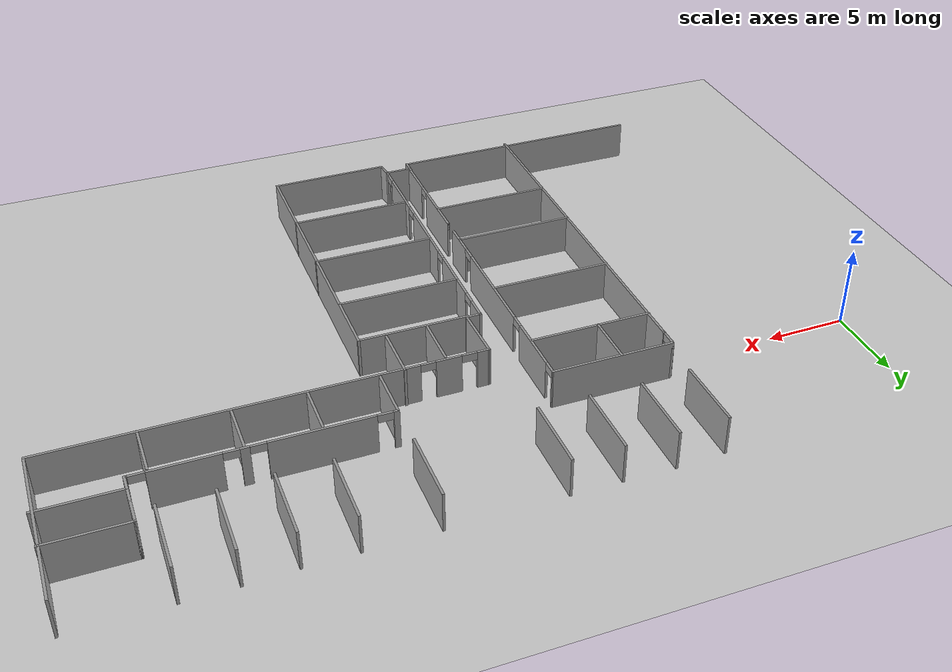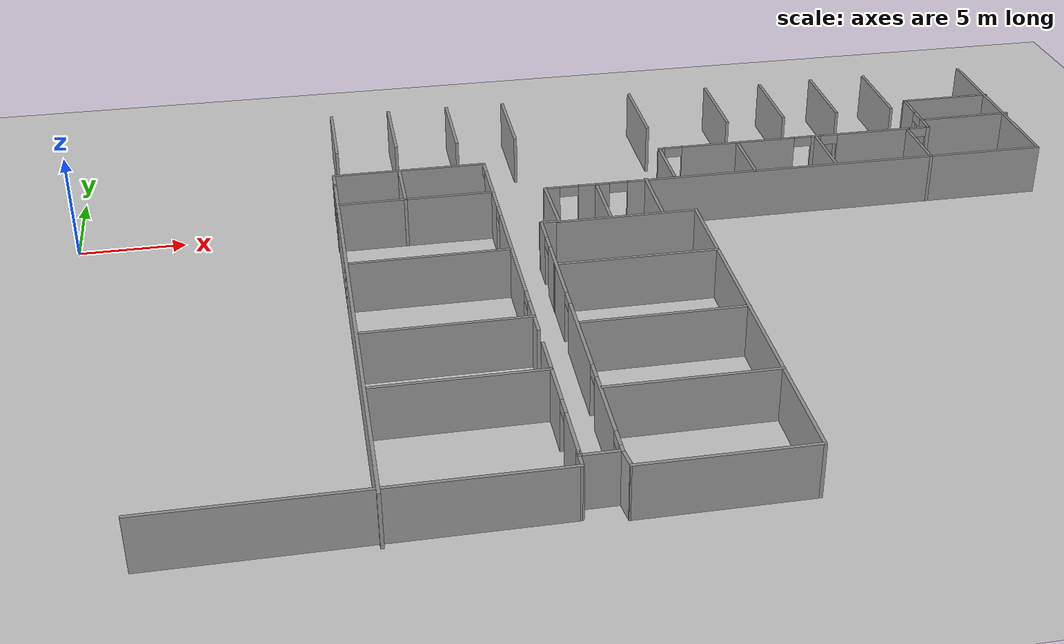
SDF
<sdf version="1.7">
 <world name="default">
  <model name="ground_plane">
   <static>1</static>
   <link name="link">
    <collision name="collision">
     <geometry><plane><normal>0 0 1</normal><size>100 100</size></plane></geometry>
     <surface><friction><ode><mu>100</mu><mu2>50</mu2></ode></friction></surface>
    </collision>
    <visual name="visual">
     <cast_shadows>0</cast_shadows>
     <geometry><plane><normal>0 0 1</normal><size>100 100</size></plane></geometry>
     <material>
      <script><uri>file://media/materials/scripts/gazebo.material</uri><name>Gazebo/Grey</name></script>
     </material>
    </visual>
   </link>
  </model>
  <model name="jec_6th_all_doors">
   <pose>6.89447 -8.09984 0 0 -0 0</pose>
   <link name="Wall_10">
    <collision name="Wall_10_Collision">
     <geometry><box><size>1.75 0.15 2.5</size></box></geometry>
     <pose>0 0 1.25 0 -0 0</pose>
    </collision>
    <visual name="Wall_10_Visual">
     <pose>0 0 1.25 0 -0 0</pose>
     <geometry><box><size>1.75 0.15 2.5</size></box></geometry>
     <material>
      <script><uri>file://media/materials/scripts/gazebo.material</uri><name>Gazebo/Grey</name></script>
      <ambient>1 1 1 1</ambient>
     </material>
     <meta><layer>0</layer></meta>
    </visual>
    <pose>13.6994 -15.3577 0 0 -0 3.14159</pose>
   </link>
   <link name="Wall_100">
    <collision name="Wall_100_Collision">
     <geometry><box><size>4.5 0.15 2.5</size></box></geometry>
     <pose>0 0 1.25 0 -0 0</pose>
    </collision>
    <visual name="Wall_100_Visual">
     <pose>0 0 1.25 0 -0 0</pose>
     <geometry><box><size>4.5 0.15 2.5</size></box></geometry>
     <material>
      <script><uri>file://media/materials/scripts/gazebo.material</uri><name>Gazebo/Grey</name></script>
      <ambient>1 1 1 1</ambient>
     </material>
     <meta><layer>0</layer></meta>
    </visual>
    <pose>11.8384 14.0513 0 0 -0 1.5708</pose>
   </link>
   <link name="Wall_102">
    <collision name="Wall_102_Collision">
     <geometry><box><size>4.5 0.15 2.5</size></box></geometry>
     <pose>0 0 1.25 0 -0 0</pose>
    </collision>
    <visual name="Wall_102_Visual">
     <pose>0 0 1.25 0 -0 0</pose>
     <geometry><box><size>4.5 0.15 2.5</size></box></geometry>
     <material>
      <script><uri>file://media/materials/scripts/gazebo.material</uri><name>Gazebo/Grey</name></script>
      <ambient>1 1 1 1</ambient>
     </material>
     <meta><layer>0</layer></meta>
    </visual>
    <pose>14.8392 14.0233 0 0 -0 1.5708</pose>
   </link>
   <link name="Wall_104">
    <collision name="Wall_104_Collision">
     <geometry><box><size>4.5 0.15 2.5</size></box></geometry>
     <pose>0 0 1.25 0 -0 0</pose>
    </collision>
    <visual name="Wall_104_Visual">
     <pose>0 0 1.25 0 -0 0</pose>
     <geometry><box><size>4.5 0.15 2.5</size></box></geometry>
     <material>
      <script><uri>file://media/materials/scripts/gazebo.material</uri><name>Gazebo/Grey</name></script>
      <ambient>1 1 1 1</ambient>
     </material>
     <meta><layer>0</layer></meta>
    </visual>
    <pose>21.7944 14.0373 0 0 -0 1.5708</pose>
   </link>
   <link name="Wall_106">
    <collision name="Wall_106_Collision">
     <geometry><box><size>4.5 0.15 2.5</size></box></geometry>
     <pose>0 0 1.25 0 -0 0</pose>
    </collision>
    <visual name="Wall_106_Visual">
     <pose>0 0 1.25 0 -0 0</pose>
     <geometry><box><size>4.5 0.15 2.5</size></box></geometry>
     <material>
      <script><uri>file://media/materials/scripts/gazebo.material</uri><name>Gazebo/Grey</name></script>
      <ambient>1 1 1 1</ambient>
     </material>
     <meta><layer>0</layer></meta>
    </visual>
    <pose>26.0713 14.0093 0 0 -0 1.5708</pose>
   </link>
   <link name="Wall_108">
    <collision name="Wall_108_Collision">
     <geometry><box><size>4.5 0.15 2.5</size></box></geometry>
     <pose>0 0 1.25 0 -0 0</pose>
    </collision>
    <visual name="Wall_108_Visual">
     <pose>0 0 1.25 0 -0 0</pose>
     <geometry><box><size>4.5 0.15 2.5</size></box></geometry>
     <material>
      <script><uri>file://media/materials/scripts/gazebo.material</uri><name>Gazebo/Grey</name></script>
      <ambient>1 1 1 1</ambient>
     </material>
     <meta><layer>0</layer></meta>
    </visual>
    <pose>29.1282 13.9812 0 0 -0 1.5708</pose>
   </link>
   <link name="Wall_11">
    <pose>12.8709 -3.07187 0 0 -0 1.57311</pose>
    <visual name="Wall_11_Visual_0">
     <pose>-10.9495 0 1.25 0 -0 0</pose>
     <geometry><box><size>2.82258 0.15 2.5</size></box></geometry>
     <material>
      <script><uri>file://media/materials/scripts/gazebo.material</uri><name>Gazebo/Grey</name></script>
      <ambient>1 1 1 1</ambient>
     </material>
     <meta><layer>0</layer></meta>
    </visual>
    <collision name="Wall_11_Collision_0">
     <geometry><box><size>2.82258 0.15 2.5</size></box></geometry>
     <pose>-10.9495 0 1.25 0 -0 0</pose>
    </collision>
    <visual name="Wall_11_Visual_1">
     <pose>-6.5426 0 1.25 0 -0 0</pose>
     <geometry><box><size>4.19128 0.15 2.5</size></box></geometry>
     <material>
      <script><uri>file://media/materials/scripts/gazebo.material</uri><name>Gazebo/Grey</name></script>
      <ambient>1 1 1 1</ambient>
     </material>
     <meta><layer>0</layer></meta>
    </visual>
    <collision name="Wall_11_Collision_1">
     <geometry><box><size>4.19128 0.15 2.5</size></box></geometry>
     <pose>-6.5426 0 1.25 0 -0 0</pose>
    </collision>
    <visual name="Wall_11_Visual_2">
     <pose>-2.36845 0 1.25 0 -0 0</pose>
     <geometry><box><size>2.35702 0.15 2.5</size></box></geometry>
     <material>
      <script><uri>file://media/materials/scripts/gazebo.material</uri><name>Gazebo/Grey</name></script>
      <ambient>1 1 1 1</ambient>
     </material>
     <meta><layer>0</layer></meta>
    </visual>
    <collision name="Wall_11_Collision_2">
     <geometry><box><size>2.35702 0.15 2.5</size></box></geometry>
     <pose>-2.36845 0 1.25 0 -0 0</pose>
    </collision>
    <visual name="Wall_11_Visual_3">
     <pose>3.22052 0 1.25 0 -0 0</pose>
     <geometry><box><size>7.02092 0.15 2.5</size></box></geometry>
     <material>
      <script><uri>file://media/materials/scripts/gazebo.material</uri><name>Gazebo/Grey</name></script>
      <ambient>1 1 1 1</ambient>
     </material>
     <meta><layer>0</layer></meta>
    </visual>
    <collision name="Wall_11_Collision_3">
     <geometry><box><size>7.02092 0.15 2.5</size></box></geometry>
     <pose>3.22052 0 1.25 0 -0 0</pose>
    </collision>
    <visual name="Wall_11_Visual_4">
     <pose>9.5292 0 1.25 0 -0 0</pose>
     <geometry><box><size>3.79644 0.15 2.5</size></box></geometry>
     <material>
      <script><uri>file://media/materials/scripts/gazebo.material</uri><name>Gazebo/Grey</name></script>
      <ambient>1 1 1 1</ambient>
     </material>
     <meta><layer>0</layer></meta>
    </visual>
    <collision name="Wall_11_Collision_4">
     <geometry><box><size>3.79644 0.15 2.5</size></box></geometry>
     <pose>9.5292 0 1.25 0 -0 0</pose>
    </collision>
    <visual name="Wall_11_Visual_5">
     <pose>12.3441 0 1.25 0 -0 0</pose>
     <geometry><box><size>0.033401 0.15 2.5</size></box></geometry>
     <material>
      <script><uri>file://media/materials/scripts/gazebo.material</uri><name>Gazebo/Grey</name></script>
      <ambient>1 1 1 1</ambient>
     </material>
     <meta><layer>0</layer></meta>
    </visual>
    <collision name="Wall_11_Collision_5">
     <geometry><box><size>0.033401 0.15 2.5</size></box></geometry>
     <pose>12.3441 0 1.25 0 -0 0</pose>
    </collision>
    <visual name="Wall_11_Visual_6">
     <pose>-9.08824 0 2.25 0 -0 0</pose>
     <geometry><box><size>0.9 0.15 0.5</size></box></geometry>
     <material>
      <script><uri>file://media/materials/scripts/gazebo.material</uri><name>Gazebo/Grey</name></script>
      <ambient>1 1 1 1</ambient>
     </material>
     <meta><layer>0</layer></meta>
    </visual>
    <collision name="Wall_11_Collision_6">
     <geometry><box><size>0.9 0.15 0.5</size></box></geometry>
     <pose>-9.08824 0 2.25 0 -0 0</pose>
    </collision>
    <visual name="Wall_11_Visual_7">
     <pose>-4.44696 0 2.25 0 -0 0</pose>
     <geometry><box><size>0 0.15 0.5</size></box></geometry>
     <material>
      <script><uri>file://media/materials/scripts/gazebo.material</uri><name>Gazebo/Grey</name></script>
      <ambient>1 1 1 1</ambient>
     </material>
     <meta><layer>0</layer></meta>
    </visual>
    <collision name="Wall_11_Collision_7">
     <geometry><box><size>0 0.15 0.5</size></box></geometry>
     <pose>-4.44696 0 2.25 0 -0 0</pose>
    </collision>
    <visual name="Wall_11_Visual_8">
     <pose>-0.73994 0 2.25 0 -0 0</pose>
     <geometry><box><size>0.9 0.15 0.5</size></box></geometry>
     <material>
      <script><uri>file://media/materials/scripts/gazebo.material</uri><name>Gazebo/Grey</name></script>
      <ambient>1 1 1 1</ambient>
     </material>
     <meta><layer>0</layer></meta>
    </visual>
    <collision name="Wall_11_Collision_8">
     <geometry><box><size>0.9 0.15 0.5</size></box></geometry>
     <pose>-0.73994 0 2.25 0 -0 0</pose>
    </collision>
    <visual name="Wall_11_Visual_9">
     <pose>7.18098 0 2.25 0 -0 0</pose>
     <geometry><box><size>0.9 0.15 0.5</size></box></geometry>
     <material>
      <script><uri>file://media/materials/scripts/gazebo.material</uri><name>Gazebo/Grey</name></script>
      <ambient>1 1 1 1</ambient>
     </material>
     <meta><layer>0</layer></meta>
    </visual>
    <collision name="Wall_11_Collision_9">
     <geometry><box><size>0.9 0.15 0.5</size></box></geometry>
     <pose>7.18098 0 2.25 0 -0 0</pose>
    </collision>
    <visual name="Wall_11_Visual_10">
     <pose>11.8774 0 2.25 0 -0 0</pose>
     <geometry><box><size>0.9 0.15 0.5</size></box></geometry>
     <material>
      <script><uri>file://media/materials/scripts/gazebo.material</uri><name>Gazebo/Grey</name></script>
      <ambient>1 1 1 1</ambient>
     </material>
     <meta><layer>0</layer></meta>
    </visual>
    <collision name="Wall_11_Collision_10">
     <geometry><box><size>0.9 0.15 0.5</size></box></geometry>
     <pose>11.8774 0 2.25 0 -0 0</pose>
    </collision>
   </link>
   <link name="Wall_110">
    <collision name="Wall_110_Collision">
     <geometry><box><size>4.5 0.15 2.5</size></box></geometry>
     <pose>0 0 1.25 0 -0 0</pose>
    </collision>
    <visual name="Wall_110_Visual">
     <pose>0 0 1.25 0 -0 0</pose>
     <geometry><box><size>4.5 0.15 2.5</size></box></geometry>
     <material>
      <script><uri>file://media/materials/scripts/gazebo.material</uri><name>Gazebo/Grey</name></script>
      <ambient>1 1 1 1</ambient>
     </material>
     <meta><layer>0</layer></meta>
    </visual>
    <pose>32.0766 14.0631 0 0 -0 1.5708</pose>
   </link>
   <link name="Wall_112">
    <collision name="Wall_112_Collision">
     <geometry><box><size>4.5 0.15 2.5</size></box></geometry>
     <pose>0 0 1.25 0 -0 0</pose>
    </collision>
    <visual name="Wall_112_Visual">
     <pose>0 0 1.25 0 -0 0</pose>
     <geometry><box><size>4.5 0.15 2.5</size></box></geometry>
     <material>
      <script><uri>file://media/materials/scripts/gazebo.material</uri><name>Gazebo/Grey</name></script>
      <ambient>1 1 1 1</ambient>
     </material>
     <meta><layer>0</layer></meta>
    </visual>
    <pose>35.118 14.0631 0 0 -0 1.5708</pose>
   </link>
   <link name="Wall_123">
    <pose>5.4425 8.66391 0 0 -0 1.5708</pose>
    <visual name="Wall_123_Visual_0">
     <pose>-0.514107 0 1.25 0 -0 0</pose>
     <geometry><box><size>0.221785 0.15 2.5</size></box></geometry>
     <material>
      <script><uri>file://media/materials/scripts/gazebo.material</uri><name>Gazebo/Grey</name></script>
      <ambient>1 1 1 1</ambient>
     </material>
     <meta><layer>0</layer></meta>
    </visual>
    <collision name="Wall_123_Collision_0">
     <geometry><box><size>0.221785 0.15 2.5</size></box></geometry>
     <pose>-0.514107 0 1.25 0 -0 0</pose>
    </collision>
    <visual name="Wall_123_Visual_1">
     <pose>0.560893 0 1.25 0 -0 0</pose>
     <geometry><box><size>0.128215 0.15 2.5</size></box></geometry>
     <material>
      <script><uri>file://media/materials/scripts/gazebo.material</uri><name>Gazebo/Grey</name></script>
      <ambient>1 1 1 1</ambient>
     </material>
     <meta><layer>0</layer></meta>
    </visual>
    <collision name="Wall_123_Collision_1">
     <geometry><box><size>0.128215 0.15 2.5</size></box></geometry>
     <pose>0.560893 0 1.25 0 -0 0</pose>
    </collision>
    <visual name="Wall_123_Visual_2">
     <pose>0.046785 0 2.25 0 -0 0</pose>
     <geometry><box><size>0.9 0.15 0.5</size></box></geometry>
     <material>
      <script><uri>file://media/materials/scripts/gazebo.material</uri><name>Gazebo/Grey</name></script>
      <ambient>1 1 1 1</ambient>
     </material>
     <meta><layer>0</layer></meta>
    </visual>
    <collision name="Wall_123_Collision_2">
     <geometry><box><size>0.9 0.15 0.5</size></box></geometry>
     <pose>0.046785 0 2.25 0 -0 0</pose>
    </collision>
   </link>
   <link name="Wall_124">
    <collision name="Wall_124_Collision">
     <geometry><box><size>7.55 0.15 2.5</size></box></geometry>
     <pose>0 0 1.25 0 -0 0</pose>
    </collision>
    <visual name="Wall_124_Visual">
     <pose>0 0 1.25 0 -0 0</pose>
     <geometry><box><size>7.55 0.15 2.5</size></box></geometry>
     <material>
      <script><uri>file://media/materials/scripts/gazebo.material</uri><name>Gazebo/Grey</name></script>
      <ambient>1 1 1 1</ambient>
     </material>
     <meta><layer>0</layer></meta>
    </visual>
    <pose>9.1425 9.21391 0 0 -0 0</pose>
   </link>
   <link name="Wall_127">
    <collision name="Wall_127_Collision">
     <geometry><box><size>24.5 0.15 2.5</size></box></geometry>
     <pose>0 0 1.25 0 -0 0</pose>
    </collision>
    <visual name="Wall_127_Visual">
     <pose>0 0 1.25 0 -0 0</pose>
     <geometry><box><size>24.5 0.15 2.5</size></box></geometry>
     <material>
      <script><uri>file://media/materials/scripts/gazebo.material</uri><name>Gazebo/Grey</name></script>
      <ambient>1 1 1 1</ambient>
     </material>
     <meta><layer>0</layer></meta>
    </visual>
    <pose>5.4425 -4.06109 0 0 -0 -1.5708</pose>
   </link>
   <link name="Wall_129">
    <collision name="Wall_129_Collision">
     <geometry><box><size>7.5 0.15 2.5</size></box></geometry>
     <pose>0 0 1.25 0 -0 0</pose>
    </collision>
    <visual name="Wall_129_Visual">
     <pose>0 0 1.25 0 -0 0</pose>
     <geometry><box><size>7.5 0.15 2.5</size></box></geometry>
     <material>
      <script><uri>file://media/materials/scripts/gazebo.material</uri><name>Gazebo/Grey</name></script>
      <ambient>1 1 1 1</ambient>
     </material>
     <meta><layer>0</layer></meta>
    </visual>
    <pose>9.0767 6.11565 0 0 -0 0</pose>
   </link>
   <link name="Wall_131">
    <collision name="Wall_131_Collision">
     <geometry><box><size>3.25 0.15 2.5</size></box></geometry>
     <pose>0 0 1.25 0 -0 0</pose>
    </collision>
    <visual name="Wall_131_Visual">
     <pose>0 0 1.25 0 -0 0</pose>
     <geometry><box><size>3.25 0.15 2.5</size></box></geometry>
     <material>
      <script><uri>file://media/materials/scripts/gazebo.material</uri><name>Gazebo/Grey</name></script>
      <ambient>1 1 1 1</ambient>
     </material>
     <meta><layer>0</layer></meta>
    </visual>
    <pose>8.64352 7.65948 0 0 -0 -1.5708</pose>
   </link>
   <link name="Wall_133">
    <collision name="Wall_133_Collision">
     <geometry><box><size>7.5 0.15 2.5</size></box></geometry>
     <pose>0 0 1.25 0 -0 0</pose>
    </collision>
    <visual name="Wall_133_Visual">
     <pose>0 0 1.25 0 -0 0</pose>
     <geometry><box><size>7.5 0.15 2.5</size></box></geometry>
     <material>
      <script><uri>file://media/materials/scripts/gazebo.material</uri><name>Gazebo/Grey</name></script>
      <ambient>1 1 1 1</ambient>
     </material>
     <meta><layer>0</layer></meta>
    </visual>
    <pose>9.10958 0.409886 0 0 -0 0</pose>
   </link>
   <link name="Wall_135">
    <collision name="Wall_135_Collision">
     <geometry><box><size>7.5 0.15 2.5</size></box></geometry>
     <pose>0 0 1.25 0 -0 0</pose>
    </collision>
    <visual name="Wall_135_Visual">
     <pose>0 0 1.25 0 -0 0</pose>
     <geometry><box><size>7.5 0.15 2.5</size></box></geometry>
     <material>
      <script><uri>file://media/materials/scripts/gazebo.material</uri><name>Gazebo/Grey</name></script>
      <ambient>1 1 1 1</ambient>
     </material>
     <meta><layer>0</layer></meta>
    </visual>
    <pose>18.2355 -1.31664 0 0 -0 0</pose>
   </link>
   <link name="Wall_137">
    <collision name="Wall_137_Collision">
     <geometry><box><size>7.5 0.15 2.5</size></box></geometry>
     <pose>0 0 1.25 0 -0 0</pose>
    </collision>
    <visual name="Wall_137_Visual">
     <pose>0 0 1.25 0 -0 0</pose>
     <geometry><box><size>7.5 0.15 2.5</size></box></geometry>
     <material>
      <script><uri>file://media/materials/scripts/gazebo.material</uri><name>Gazebo/Grey</name></script>
      <ambient>1 1 1 1</ambient>
     </material>
     <meta><layer>0</layer></meta>
    </visual>
    <pose>18.3177 -6.29891 0 0 -0 0</pose>
   </link>
   <link name="Wall_139">
    <collision name="Wall_139_Collision">
     <geometry><box><size>7.5 0.15 2.5</size></box></geometry>
     <pose>0 0 1.25 0 -0 0</pose>
    </collision>
    <visual name="Wall_139_Visual">
     <pose>0 0 1.25 0 -0 0</pose>
     <geometry><box><size>7.5 0.15 2.5</size></box></geometry>
     <material>
      <script><uri>file://media/materials/scripts/gazebo.material</uri><name>Gazebo/Grey</name></script>
      <ambient>1 1 1 1</ambient>
     </material>
     <meta><layer>0</layer></meta>
    </visual>
    <pose>18.3056 -11.1696 0 0 -0 0</pose>
   </link>
   <link name="Wall_141">
    <collision name="Wall_141_Collision">
     <geometry><box><size>1.10155 0.15 2.5</size></box></geometry>
     <pose>0 0 1.25 0 -0 0</pose>
    </collision>
    <visual name="Wall_141_Visual">
     <pose>0 0 1.25 0 -0 0</pose>
     <geometry><box><size>1.10155 0.15 2.5</size></box></geometry>
     <material>
      <script><uri>file://media/materials/scripts/gazebo.material</uri><name>Gazebo/Grey</name></script>
      <ambient>1 1 1 1</ambient>
     </material>
     <meta><layer>0</layer></meta>
    </visual>
    <pose>14.5593 -15.8296 0 0 -0 1.69711</pose>
   </link>
   <link name="Wall_143">
    <collision name="Wall_143_Collision">
     <geometry><box><size>7.5 0.15 2.5</size></box></geometry>
     <pose>0 0 1.25 0 -0 0</pose>
    </collision>
    <visual name="Wall_143_Visual">
     <pose>0 0 1.25 0 -0 0</pose>
     <geometry><box><size>7.5 0.15 2.5</size></box></geometry>
     <material>
      <script><uri>file://media/materials/scripts/gazebo.material</uri><name>Gazebo/Grey</name></script>
      <ambient>1 1 1 1</ambient>
     </material>
     <meta><layer>0</layer></meta>
    </visual>
    <pose>18.2942 -16.3016 0 0 -0 0</pose>
   </link>
   <link name="Wall_144">
    <collision name="Wall_144_Collision">
     <geometry><box><size>19 0.15 2.5</size></box></geometry>
     <pose>0 0 1.25 0 -0 0</pose>
    </collision>
    <visual name="Wall_144_Visual">
     <pose>0 0 1.25 0 -0 0</pose>
     <geometry><box><size>19 0.15 2.5</size></box></geometry>
     <material>
      <script><uri>file://media/materials/scripts/gazebo.material</uri><name>Gazebo/Grey</name></script>
      <ambient>1 1 1 1</ambient>
     </material>
     <meta><layer>0</layer></meta>
    </visual>
    <pose>21.9692 -6.87663 0 0 -0 1.5708</pose>
   </link>
   <link name="Wall_146">
    <collision name="Wall_146_Collision">
     <geometry><box><size>6.75 0.15 2.5</size></box></geometry>
     <pose>0 0 1.25 0 -0 0</pose>
    </collision>
    <visual name="Wall_146_Visual">
     <pose>0 0 1.25 0 -0 0</pose>
     <geometry><box><size>6.75 0.15 2.5</size></box></geometry>
     <material>
      <script><uri>file://media/materials/scripts/gazebo.material</uri><name>Gazebo/Grey</name></script>
      <ambient>1 1 1 1</ambient>
     </material>
     <meta><layer>0</layer></meta>
    </visual>
    <pose>18.6692 2.54837 0 0 -0 3.14159</pose>
   </link>
   <link name="Wall_148">
    <collision name="Wall_148_Collision">
     <geometry><box><size>3.5 0.15 2.5</size></box></geometry>
     <pose>0 0 1.25 0 -0 0</pose>
    </collision>
    <visual name="Wall_148_Visual">
     <pose>0 0 1.25 0 -0 0</pose>
     <geometry><box><size>3.5 0.15 2.5</size></box></geometry>
     <material>
      <script><uri>file://media/materials/scripts/gazebo.material</uri><name>Gazebo/Grey</name></script>
      <ambient>1 1 1 1</ambient>
     </material>
     <meta><layer>0</layer></meta>
    </visual>
    <pose>20.3752 4.41514 0 0 -0 -1.5708</pose>
   </link>
   <link name="Wall_150">
    <collision name="Wall_150_Collision">
     <geometry><box><size>7.5 0.15 2.5</size></box></geometry>
     <pose>0 0 1.25 0 -0 0</pose>
    </collision>
    <visual name="Wall_150_Visual">
     <pose>0 0 1.25 0 -0 0</pose>
     <geometry><box><size>7.5 0.15 2.5</size></box></geometry>
     <material>
      <script><uri>file://media/materials/scripts/gazebo.material</uri><name>Gazebo/Grey</name></script>
      <ambient>1 1 1 1</ambient>
     </material>
     <meta><layer>0</layer></meta>
    </visual>
    <pose>9.18576 -5.46599 0 0 -0 0</pose>
   </link>
   <link name="Wall_152">
    <collision name="Wall_152_Collision">
     <geometry><box><size>7.5 0.15 2.5</size></box></geometry>
     <pose>0 0 1.25 0 -0 0</pose>
    </collision>
    <visual name="Wall_152_Visual">
     <pose>0 0 1.25 0 -0 0</pose>
     <geometry><box><size>7.5 0.15 2.5</size></box></geometry>
     <material>
      <script><uri>file://media/materials/scripts/gazebo.material</uri><name>Gazebo/Grey</name></script>
      <ambient>1 1 1 1</ambient>
     </material>
     <meta><layer>0</layer></meta>
    </visual>
    <pose>9.17245 -9.53865 0 0 -0 0</pose>
   </link>
   <link name="Wall_184">
    <collision name="Wall_184_Collision">
     <geometry><box><size>3.25 0.15 2.5</size></box></geometry>
     <pose>0 0 1.25 0 -0 0</pose>
    </collision>
    <visual name="Wall_184_Visual">
     <pose>0 0 1.25 0 -0 0</pose>
     <geometry><box><size>3.25 0.15 2.5</size></box></geometry>
     <material>
      <script><uri>file://media/materials/scripts/gazebo.material</uri><name>Gazebo/Grey</name></script>
      <ambient>1 1 1 1</ambient>
     </material>
     <meta><layer>0</layer></meta>
    </visual>
    <pose>17.8944 4.25238 0 0 -0 1.5708</pose>
   </link>
   <link name="Wall_186">
    <collision name="Wall_186_Collision">
     <geometry><box><size>3.25 0.15 2.5</size></box></geometry>
     <pose>0 0 1.25 0 -0 0</pose>
    </collision>
    <visual name="Wall_186_Visual">
     <pose>0 0 1.25 0 -0 0</pose>
     <geometry><box><size>3.25 0.15 2.5</size></box></geometry>
     <material>
      <script><uri>file://media/materials/scripts/gazebo.material</uri><name>Gazebo/Grey</name></script>
      <ambient>1 1 1 1</ambient>
     </material>
     <meta><layer>0</layer></meta>
    </visual>
    <pose>25.9013 7.59221 0 0 -0 1.5708</pose>
   </link>
   <link name="Wall_188">
    <collision name="Wall_188_Collision">
     <geometry><box><size>3.25 0.15 2.5</size></box></geometry>
     <pose>0 0 1.25 0 -0 0</pose>
    </collision>
    <visual name="Wall_188_Visual">
     <pose>0 0 1.25 0 -0 0</pose>
     <geometry><box><size>3.25 0.15 2.5</size></box></geometry>
     <material>
      <script><uri>file://media/materials/scripts/gazebo.material</uri><name>Gazebo/Grey</name></script>
      <ambient>1 1 1 1</ambient>
     </material>
     <meta><layer>0</layer></meta>
    </visual>
    <pose>30.0739 7.60416 0 0 -0 1.5708</pose>
   </link>
   <link name="Wall_190">
    <collision name="Wall_190_Collision">
     <geometry><box><size>3.25 0.15 2.5</size></box></geometry>
     <pose>0 0 1.25 0 -0 0</pose>
    </collision>
    <visual name="Wall_190_Visual">
     <pose>0 0 1.25 0 -0 0</pose>
     <geometry><box><size>3.25 0.15 2.5</size></box></geometry>
     <material>
      <script><uri>file://media/materials/scripts/gazebo.material</uri><name>Gazebo/Grey</name></script>
      <ambient>1 1 1 1</ambient>
     </material>
     <meta><layer>0</layer></meta>
    </visual>
    <pose>35.0115 7.54439 0 0 -0 1.5708</pose>
   </link>
   <link name="Wall_2">
    <collision name="Wall_2_Collision">
     <geometry><box><size>10.4007 0.15 2.5</size></box></geometry>
     <pose>0 0 1.25 0 -0 0</pose>
    </collision>
    <visual name="Wall_2_Visual">
     <pose>0 0 1.25 0 -0 0</pose>
     <geometry><box><size>10.4007 0.15 2.5</size></box></geometry>
     <material>
      <script><uri>file://media/materials/scripts/gazebo.material</uri><name>Gazebo/Grey</name></script>
      <ambient>1 1 1 1</ambient>
     </material>
     <meta><layer>0</layer></meta>
    </visual>
    <pose>40.7114 11.1305 0 0 -0 -1.5695</pose>
   </link>
   <link name="Wall_3">
    <pose>28.0431 6.00369 0 0 -0 3.14159</pose>
    <visual name="Wall_3_Visual_0">
     <pose>-2.07114 0 1.25 0 -0 0</pose>
     <geometry><box><size>21.3577 0.15 2.5</size></box></geometry>
     <material>
      <script><uri>file://media/materials/scripts/gazebo.material</uri><name>Gazebo/Grey</name></script>
      <ambient>1 1 1 1</ambient>
     </material>
     <meta><layer>0</layer></meta>
    </visual>
    <collision name="Wall_3_Collision_0">
     <geometry><box><size>21.3577 0.15 2.5</size></box></geometry>
     <pose>-2.07114 0 1.25 0 -0 0</pose>
    </collision>
    <visual name="Wall_3_Visual_1">
     <pose>10.2752 0 1.25 0 -0 0</pose>
     <geometry><box><size>1.53495 0.15 2.5</size></box></geometry>
     <material>
      <script><uri>file://media/materials/scripts/gazebo.material</uri><name>Gazebo/Grey</name></script>
      <ambient>1 1 1 1</ambient>
     </material>
     <meta><layer>0</layer></meta>
    </visual>
    <collision name="Wall_3_Collision_1">
     <geometry><box><size>1.53495 0.15 2.5</size></box></geometry>
     <pose>10.2752 0 1.25 0 -0 0</pose>
    </collision>
    <visual name="Wall_3_Visual_2">
     <pose>12.3463 0 1.25 0 -0 0</pose>
     <geometry><box><size>0.807334 0.15 2.5</size></box></geometry>
     <material>
      <script><uri>file://media/materials/scripts/gazebo.material</uri><name>Gazebo/Grey</name></script>
      <ambient>1 1 1 1</ambient>
     </material>
     <meta><layer>0</layer></meta>
    </visual>
    <collision name="Wall_3_Collision_2">
     <geometry><box><size>0.807334 0.15 2.5</size></box></geometry>
     <pose>12.3463 0 1.25 0 -0 0</pose>
    </collision>
    <visual name="Wall_3_Visual_3">
     <pose>9.05772 0 2.25 0 -0 0</pose>
     <geometry><box><size>0.9 0.15 0.5</size></box></geometry>
     <material>
      <script><uri>file://media/materials/scripts/gazebo.material</uri><name>Gazebo/Grey</name></script>
      <ambient>1 1 1 1</ambient>
     </material>
     <meta><layer>0</layer></meta>
    </visual>
    <collision name="Wall_3_Collision_3">
     <geometry><box><size>0.9 0.15 0.5</size></box></geometry>
     <pose>9.05772 0 2.25 0 -0 0</pose>
    </collision>
    <visual name="Wall_3_Visual_4">
     <pose>11.4927 0 2.25 0 -0 0</pose>
     <geometry><box><size>0.9 0.15 0.5</size></box></geometry>
     <material>
      <script><uri>file://media/materials/scripts/gazebo.material</uri><name>Gazebo/Grey</name></script>
      <ambient>1 1 1 1</ambient>
     </material>
     <meta><layer>0</layer></meta>
    </visual>
    <collision name="Wall_3_Collision_4">
     <geometry><box><size>0.9 0.15 0.5</size></box></geometry>
     <pose>11.4927 0 2.25 0 -0 0</pose>
    </collision>
   </link>
   <link name="Wall_31">
    <collision name="Wall_31_Collision">
     <geometry><box><size>16.4579 0.15 2.5</size></box></geometry>
     <pose>0 0 1.25 0 -0 0</pose>
    </collision>
    <visual name="Wall_31_Visual">
     <pose>0 0 1.25 0 -0 0</pose>
     <geometry><box><size>16.4579 0.15 2.5</size></box></geometry>
     <material>
      <script><uri>file://media/materials/scripts/gazebo.material</uri><name>Gazebo/Grey</name></script>
      <ambient>1 1 1 1</ambient>
     </material>
     <meta><layer>0</layer></meta>
    </visual>
    <pose>4.70329 -15.9744 0 0 -0 -0.002056</pose>
   </link>
   <link name="Wall_32">
    <collision name="Wall_32_Collision">
     <geometry><box><size>1 0.15 2.5</size></box></geometry>
     <pose>0 0 1.25 0 -0 0</pose>
    </collision>
    <visual name="Wall_32_Visual">
     <pose>0 0 1.25 0 -0 0</pose>
     <geometry><box><size>1 0.15 2.5</size></box></geometry>
     <material>
      <script><uri>file://media/materials/scripts/gazebo.material</uri><name>Gazebo/Grey</name></script>
      <ambient>1 1 1 1</ambient>
     </material>
     <meta><layer>0</layer></meta>
    </visual>
    <pose>12.8572 -15.5662 0 0 -0 1.5708</pose>
   </link>
   <link name="Wall_4">
    <collision name="Wall_4_Collision">
     <geometry><box><size>3.52834 0.15 2.5</size></box></geometry>
     <pose>0 0 1.25 0 -0 0</pose>
    </collision>
    <visual name="Wall_4_Visual">
     <pose>0 0 1.25 0 -0 0</pose>
     <geometry><box><size>3.52834 0.15 2.5</size></box></geometry>
     <material>
      <script><uri>file://media/materials/scripts/gazebo.material</uri><name>Gazebo/Grey</name></script>
      <ambient>1 1 1 1</ambient>
     </material>
     <meta><layer>0</layer></meta>
    </visual>
    <pose>15.4045 4.31492 0 0 -0 -1.54923</pose>
   </link>
   <link name="Wall_53">
    <pose>36.1793 10.9769 0 0 -0 -1.5708</pose>
    <visual name="Wall_53_Visual_0">
     <pose>-0.969991 0 1.25 0 -0 0</pose>
     <geometry><box><size>1.56002 0.15 2.5</size></box></geometry>
     <material>
      <script><uri>file://media/materials/scripts/gazebo.material</uri><name>Gazebo/Grey</name></script>
      <ambient>1 1 1 1</ambient>
     </material>
     <meta><layer>0</layer></meta>
    </visual>
    <collision name="Wall_53_Collision_0">
     <geometry><box><size>1.56002 0.15 2.5</size></box></geometry>
     <pose>-0.969991 0 1.25 0 -0 0</pose>
    </collision>
    <visual name="Wall_53_Visual_1">
     <pose>1.23001 0 1.25 0 -0 0</pose>
     <geometry><box><size>1.03998 0.15 2.5</size></box></geometry>
     <material>
      <script><uri>file://media/materials/scripts/gazebo.material</uri><name>Gazebo/Grey</name></script>
      <ambient>1 1 1 1</ambient>
     </material>
     <meta><layer>0</layer></meta>
    </visual>
    <collision name="Wall_53_Collision_1">
     <geometry><box><size>1.03998 0.15 2.5</size></box></geometry>
     <pose>1.23001 0 1.25 0 -0 0</pose>
    </collision>
    <visual name="Wall_53_Visual_2">
     <pose>0.260017 0 2.25 0 -0 0</pose>
     <geometry><box><size>0.9 0.15 0.5</size></box></geometry>
     <material>
      <script><uri>file://media/materials/scripts/gazebo.material</uri><name>Gazebo/Grey</name></script>
      <ambient>1 1 1 1</ambient>
     </material>
     <meta><layer>0</layer></meta>
    </visual>
    <collision name="Wall_53_Collision_2">
     <geometry><box><size>0.9 0.15 0.5</size></box></geometry>
     <pose>0.260017 0 2.25 0 -0 0</pose>
    </collision>
   </link>
   <link name="Wall_56">
    <collision name="Wall_56_Collision">
     <geometry><box><size>4.75 0.15 2.5</size></box></geometry>
     <pose>0 0 1.25 0 -0 0</pose>
    </collision>
    <visual name="Wall_56_Visual">
     <pose>0 0 1.25 0 -0 0</pose>
     <geometry><box><size>4.75 0.15 2.5</size></box></geometry>
     <material>
      <script><uri>file://media/materials/scripts/gazebo.material</uri><name>Gazebo/Grey</name></script>
      <ambient>1 1 1 1</ambient>
     </material>
     <meta><layer>0</layer></meta>
    </visual>
    <pose>38.4793 12.6519 0 0 -0 0</pose>
   </link>
   <link name="Wall_58">
    <pose>29.0043 9.30189 0 0 -0 3.14159</pose>
    <visual name="Wall_58_Visual_0">
     <pose>-7.14921 0 1.25 0 -0 0</pose>
     <geometry><box><size>0.201575 0.15 2.5</size></box></geometry>
     <material>
      <script><uri>file://media/materials/scripts/gazebo.material</uri><name>Gazebo/Grey</name></script>
      <ambient>1 1 1 1</ambient>
     </material>
     <meta><layer>0</layer></meta>
    </visual>
    <collision name="Wall_58_Collision_0">
     <geometry><box><size>0.201575 0.15 2.5</size></box></geometry>
     <pose>-7.14921 0 1.25 0 -0 0</pose>
    </collision>
    <visual name="Wall_58_Visual_1">
     <pose>-4.18936 0 1.25 0 -0 0</pose>
     <geometry><box><size>3.91813 0.15 2.5</size></box></geometry>
     <material>
      <script><uri>file://media/materials/scripts/gazebo.material</uri><name>Gazebo/Grey</name></script>
      <ambient>1 1 1 1</ambient>
     </material>
     <meta><layer>0</layer></meta>
    </visual>
    <collision name="Wall_58_Collision_1">
     <geometry><box><size>3.91813 0.15 2.5</size></box></geometry>
     <pose>-4.18936 0 1.25 0 -0 0</pose>
    </collision>
    <visual name="Wall_58_Visual_2">
     <pose>-1.07491 0 1.25 0 -0 0</pose>
     <geometry><box><size>0.510767 0.15 2.5</size></box></geometry>
     <material>
      <script><uri>file://media/materials/scripts/gazebo.material</uri><name>Gazebo/Grey</name></script>
      <ambient>1 1 1 1</ambient>
     </material>
     <meta><layer>0</layer></meta>
    </visual>
    <collision name="Wall_58_Collision_2">
     <geometry><box><size>0.510767 0.15 2.5</size></box></geometry>
     <pose>-1.07491 0 1.25 0 -0 0</pose>
    </collision>
    <visual name="Wall_58_Visual_3">
     <pose>3.04979 0 1.25 0 -0 0</pose>
     <geometry><box><size>5.93863 0.15 2.5</size></box></geometry>
     <material>
      <script><uri>file://media/materials/scripts/gazebo.material</uri><name>Gazebo/Grey</name></script>
      <ambient>1 1 1 1</ambient>
     </material>
     <meta><layer>0</layer></meta>
    </visual>
    <collision name="Wall_58_Collision_3">
     <geometry><box><size>5.93863 0.15 2.5</size></box></geometry>
     <pose>3.04979 0 1.25 0 -0 0</pose>
    </collision>
    <visual name="Wall_58_Visual_4">
     <pose>7.08455 0 1.25 0 -0 0</pose>
     <geometry><box><size>0.330895 0.15 2.5</size></box></geometry>
     <material>
      <script><uri>file://media/materials/scripts/gazebo.material</uri><name>Gazebo/Grey</name></script>
      <ambient>1 1 1 1</ambient>
     </material>
     <meta><layer>0</layer></meta>
    </visual>
    <collision name="Wall_58_Collision_4">
     <geometry><box><size>0.330895 0.15 2.5</size></box></geometry>
     <pose>7.08455 0 1.25 0 -0 0</pose>
    </collision>
    <visual name="Wall_58_Visual_5">
     <pose>-6.59842 0 2.25 0 -0 0</pose>
     <geometry><box><size>0.9 0.15 0.5</size></box></geometry>
     <material>
      <script><uri>file://media/materials/scripts/gazebo.material</uri><name>Gazebo/Grey</name></script>
      <ambient>1 1 1 1</ambient>
     </material>
     <meta><layer>0</layer></meta>
    </visual>
    <collision name="Wall_58_Collision_5">
     <geometry><box><size>0.9 0.15 0.5</size></box></geometry>
     <pose>-6.59842 0 2.25 0 -0 0</pose>
    </collision>
    <visual name="Wall_58_Visual_6">
     <pose>-1.7803 0 2.25 0 -0 0</pose>
     <geometry><box><size>0.9 0.15 0.5</size></box></geometry>
     <material>
      <script><uri>file://media/materials/scripts/gazebo.material</uri><name>Gazebo/Grey</name></script>
      <ambient>1 1 1 1</ambient>
     </material>
     <meta><layer>0</layer></meta>
    </visual>
    <collision name="Wall_58_Collision_6">
     <geometry><box><size>0.9 0.15 0.5</size></box></geometry>
     <pose>-1.7803 0 2.25 0 -0 0</pose>
    </collision>
    <visual name="Wall_58_Visual_7">
     <pose>-0.36953 0 2.25 0 -0 0</pose>
     <geometry><box><size>0.9 0.15 0.5</size></box></geometry>
     <material>
      <script><uri>file://media/materials/scripts/gazebo.material</uri><name>Gazebo/Grey</name></script>
      <ambient>1 1 1 1</ambient>
     </material>
     <meta><layer>0</layer></meta>
    </visual>
    <collision name="Wall_58_Collision_7">
     <geometry><box><size>0.9 0.15 0.5</size></box></geometry>
     <pose>-0.36953 0 2.25 0 -0 0</pose>
    </collision>
    <visual name="Wall_58_Visual_8">
     <pose>6.4691 0 2.25 0 -0 0</pose>
     <geometry><box><size>0.9 0.15 0.5</size></box></geometry>
     <material>
      <script><uri>file://media/materials/scripts/gazebo.material</uri><name>Gazebo/Grey</name></script>
      <ambient>1 1 1 1</ambient>
     </material>
     <meta><layer>0</layer></meta>
    </visual>
    <collision name="Wall_58_Collision_8">
     <geometry><box><size>0.9 0.15 0.5</size></box></geometry>
     <pose>6.4691 0 2.25 0 -0 0</pose>
    </collision>
   </link>
   <link name="Wall_60">
    <collision name="Wall_60_Collision">
     <geometry><box><size>4.75 0.15 2.5</size></box></geometry>
     <pose>0 0 1.25 0 -0 0</pose>
    </collision>
    <visual name="Wall_60_Visual">
     <pose>0 0 1.25 0 -0 0</pose>
     <geometry><box><size>4.75 0.15 2.5</size></box></geometry>
     <material>
      <script><uri>file://media/materials/scripts/gazebo.material</uri><name>Gazebo/Grey</name></script>
      <ambient>1 1 1 1</ambient>
     </material>
     <meta><layer>0</layer></meta>
    </visual>
    <pose>38.596 10.1939 0 0 -0 3.14159</pose>
   </link>
   <link name="Wall_62">
    <collision name="Wall_62_Collision">
     <geometry><box><size>3.25 0.15 2.5</size></box></geometry>
     <pose>0 0 1.25 0 -0 0</pose>
    </collision>
    <visual name="Wall_62_Visual">
     <pose>0 0 1.25 0 -0 0</pose>
     <geometry><box><size>3.25 0.15 2.5</size></box></geometry>
     <material>
      <script><uri>file://media/materials/scripts/gazebo.material</uri><name>Gazebo/Grey</name></script>
      <ambient>1 1 1 1</ambient>
     </material>
     <meta><layer>0</layer></meta>
    </visual>
    <pose>21.8293 7.75189 0 0 -0 -1.5708</pose>
   </link>
   <link name="Wall_7">
    <collision name="Wall_7_Collision">
     <geometry><box><size>1 0.15 2.5</size></box></geometry>
     <pose>0 0 1.25 0 -0 0</pose>
    </collision>
    <visual name="Wall_7_Visual">
     <pose>0 0 1.25 0 -0 0</pose>
     <geometry><box><size>1 0.15 2.5</size></box></geometry>
     <material>
      <script><uri>file://media/materials/scripts/gazebo.material</uri><name>Gazebo/Grey</name></script>
      <ambient>1 1 1 1</ambient>
     </material>
     <meta><layer>0</layer></meta>
    </visual>
    <pose>15.016 2.62614 0 0 -0 3.14159</pose>
   </link>
   <link name="Wall_8">
    <pose>14.5481 -6.35853 0 0 -0 -1.57621</pose>
    <visual name="Wall_8_Visual_0">
     <pose>-8.31221 0 1.25 0 -0 0</pose>
     <geometry><box><size>1.52408 0.15 2.5</size></box></geometry>
     <material>
      <script><uri>file://media/materials/scripts/gazebo.material</uri><name>Gazebo/Grey</name></script>
      <ambient>1 1 1 1</ambient>
     </material>
     <meta><layer>0</layer></meta>
    </visual>
    <collision name="Wall_8_Collision_0">
     <geometry><box><size>1.52408 0.15 2.5</size></box></geometry>
     <pose>-8.31221 0 1.25 0 -0 0</pose>
    </collision>
    <visual name="Wall_8_Visual_1">
     <pose>-4.59389 0 1.25 0 -0 0</pose>
     <geometry><box><size>4.11255 0.15 2.5</size></box></geometry>
     <material>
      <script><uri>file://media/materials/scripts/gazebo.material</uri><name>Gazebo/Grey</name></script>
      <ambient>1 1 1 1</ambient>
     </material>
     <meta><layer>0</layer></meta>
    </visual>
    <collision name="Wall_8_Collision_1">
     <geometry><box><size>4.11255 0.15 2.5</size></box></geometry>
     <pose>-4.59389 0 1.25 0 -0 0</pose>
    </collision>
    <visual name="Wall_8_Visual_2">
     <pose>0.765564 0 1.25 0 -0 0</pose>
     <geometry><box><size>4.80636 0.15 2.5</size></box></geometry>
     <material>
      <script><uri>file://media/materials/scripts/gazebo.material</uri><name>Gazebo/Grey</name></script>
      <ambient>1 1 1 1</ambient>
     </material>
     <meta><layer>0</layer></meta>
    </visual>
    <collision name="Wall_8_Collision_2">
     <geometry><box><size>4.80636 0.15 2.5</size></box></geometry>
     <pose>0.765564 0 1.25 0 -0 0</pose>
    </collision>
    <visual name="Wall_8_Visual_3">
     <pose>5.91243 0 1.25 0 -0 0</pose>
     <geometry><box><size>3.68736 0.15 2.5</size></box></geometry>
     <material>
      <script><uri>file://media/materials/scripts/gazebo.material</uri><name>Gazebo/Grey</name></script>
      <ambient>1 1 1 1</ambient>
     </material>
     <meta><layer>0</layer></meta>
    </visual>
    <collision name="Wall_8_Collision_3">
     <geometry><box><size>3.68736 0.15 2.5</size></box></geometry>
     <pose>5.91243 0 1.25 0 -0 0</pose>
    </collision>
    <visual name="Wall_8_Visual_4">
     <pose>8.86518 0 1.25 0 -0 0</pose>
     <geometry><box><size>0.418145 0.15 2.5</size></box></geometry>
     <material>
      <script><uri>file://media/materials/scripts/gazebo.material</uri><name>Gazebo/Grey</name></script>
      <ambient>1 1 1 1</ambient>
     </material>
     <meta><layer>0</layer></meta>
    </visual>
    <collision name="Wall_8_Collision_4">
     <geometry><box><size>0.418145 0.15 2.5</size></box></geometry>
     <pose>8.86518 0 1.25 0 -0 0</pose>
    </collision>
    <visual name="Wall_8_Visual_5">
     <pose>-7.10017 0 2.25 0 -0 0</pose>
     <geometry><box><size>0.9 0.15 0.5</size></box></geometry>
     <material>
      <script><uri>file://media/materials/scripts/gazebo.material</uri><name>Gazebo/Grey</name></script>
      <ambient>1 1 1 1</ambient>
     </material>
     <meta><layer>0</layer></meta>
    </visual>
    <collision name="Wall_8_Collision_5">
     <geometry><box><size>0.9 0.15 0.5</size></box></geometry>
     <pose>-7.10017 0 2.25 0 -0 0</pose>
    </collision>
    <visual name="Wall_8_Visual_6">
     <pose>-2.08762 0 2.25 0 -0 0</pose>
     <geometry><box><size>0.9 0.15 0.5</size></box></geometry>
     <material>
      <script><uri>file://media/materials/scripts/gazebo.material</uri><name>Gazebo/Grey</name></script>
      <ambient>1 1 1 1</ambient>
     </material>
     <meta><layer>0</layer></meta>
    </visual>
    <collision name="Wall_8_Collision_6">
     <geometry><box><size>0.9 0.15 0.5</size></box></geometry>
     <pose>-2.08762 0 2.25 0 -0 0</pose>
    </collision>
    <visual name="Wall_8_Visual_7">
     <pose>3.61875 0 2.25 0 -0 0</pose>
     <geometry><box><size>0.9 0.15 0.5</size></box></geometry>
     <material>
      <script><uri>file://media/materials/scripts/gazebo.material</uri><name>Gazebo/Grey</name></script>
      <ambient>1 1 1 1</ambient>
     </material>
     <meta><layer>0</layer></meta>
    </visual>
    <collision name="Wall_8_Collision_7">
     <geometry><box><size>0.9 0.15 0.5</size></box></geometry>
     <pose>3.61875 0 2.25 0 -0 0</pose>
    </collision>
    <visual name="Wall_8_Visual_8">
     <pose>8.20611 0 2.25 0 -0 0</pose>
     <geometry><box><size>0.9 0.15 0.5</size></box></geometry>
     <material>
      <script><uri>file://media/materials/scripts/gazebo.material</uri><name>Gazebo/Grey</name></script>
      <ambient>1 1 1 1</ambient>
     </material>
     <meta><layer>0</layer></meta>
    </visual>
    <collision name="Wall_8_Collision_8">
     <geometry><box><size>0.9 0.15 0.5</size></box></geometry>
     <pose>8.20611 0 2.25 0 -0 0</pose>
    </collision>
   </link>
   <link name="Wall_96">
    <collision name="Wall_96_Collision">
     <geometry><box><size>4.5 0.15 2.5</size></box></geometry>
     <pose>0 0 1.25 0 -0 0</pose>
    </collision>
    <visual name="Wall_96_Visual">
     <pose>0 0 1.25 0 -0 0</pose>
     <geometry><box><size>4.5 0.15 2.5</size></box></geometry>
     <material>
      <script><uri>file://media/materials/scripts/gazebo.material</uri><name>Gazebo/Grey</name></script>
      <ambient>1 1 1 1</ambient>
     </material>
     <meta><layer>0</layer></meta>
    </visual>
    <pose>5.75268 13.9953 0 0 -0 1.5708</pose>
   </link>
   <link name="Wall_98">
    <collision name="Wall_98_Collision">
     <geometry><box><size>4.5 0.15 2.5</size></box></geometry>
     <pose>0 0 1.25 0 -0 0</pose>
    </collision>
    <visual name="Wall_98_Visual">
     <pose>0 0 1.25 0 -0 0</pose>
     <geometry><box><size>4.5 0.15 2.5</size></box></geometry>
     <material>
      <script><uri>file://media/materials/scripts/gazebo.material</uri><name>Gazebo/Grey</name></script>
      <ambient>1 1 1 1</ambient>
     </material>
     <meta><layer>0</layer></meta>
    </visual>
    <pose>8.75349 14.1355 0 0 -0 1.5708</pose>
   </link>
   <static>1</static>
  </model>
 </world>
</sdf>
